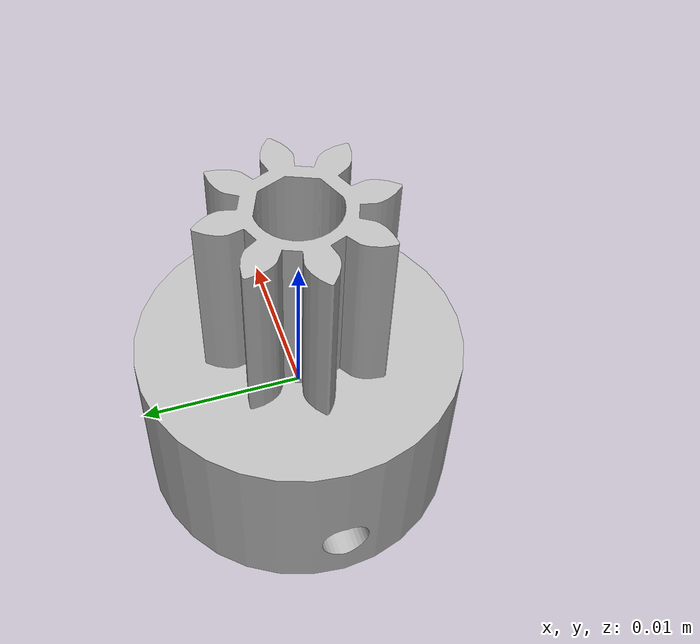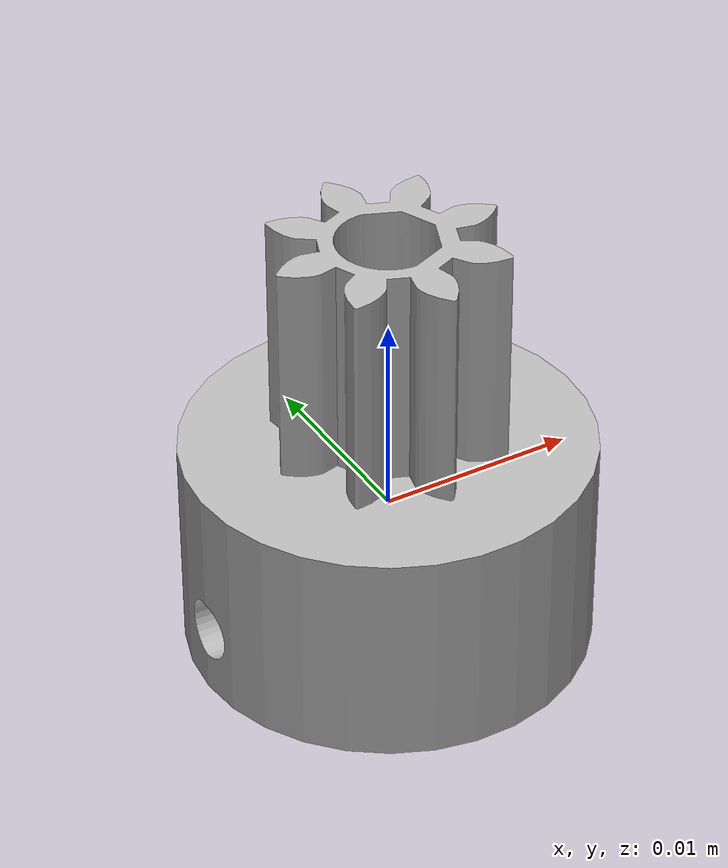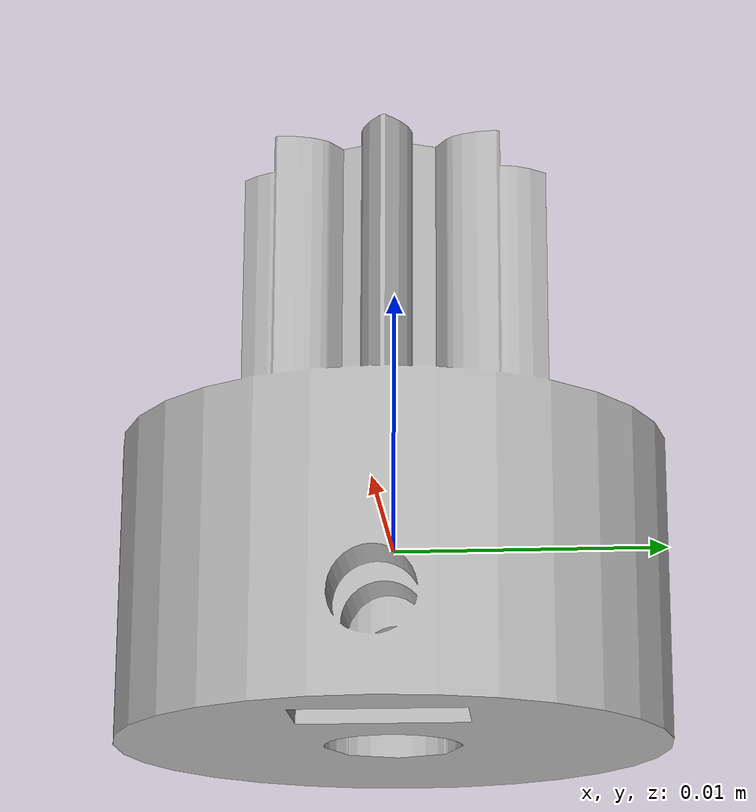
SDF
<?xml version="1.0" ?>
<sdf version="1.5">
  <model name="sun_gear">
    <static>false</static>
    <link name="link">
      <collision name="collision">
        <geometry>
          <mesh>
            <scale>1 1 1</scale>
            <uri>model://Nema/sun_gear/sun_gear.dae</uri>
          </mesh>
        </geometry>
      </collision>
      <visual name="visual">
        <geometry>
          <mesh>
            <scale>1 1 1</scale>
            <uri>model://Nema/sun_gear/sun_gear.dae</uri>
          </mesh>
        </geometry>
      </visual>
    </link>
  </model>
</sdf>
